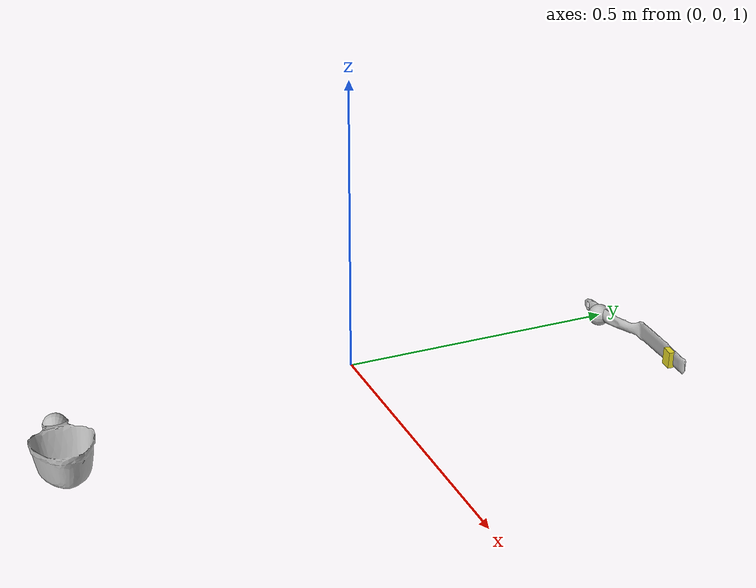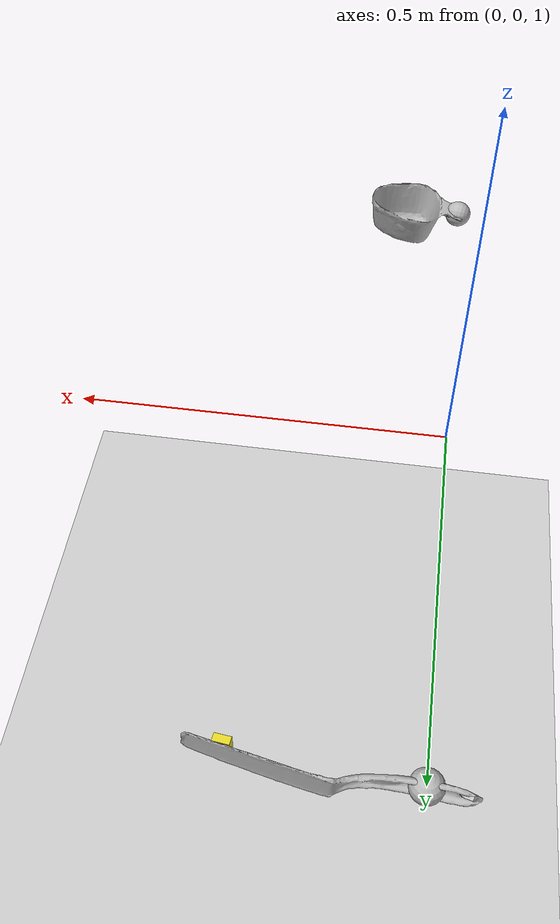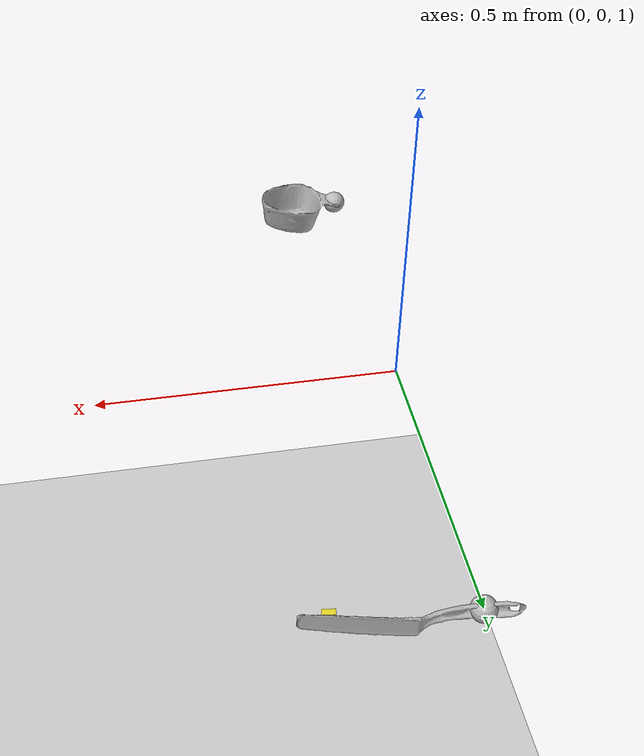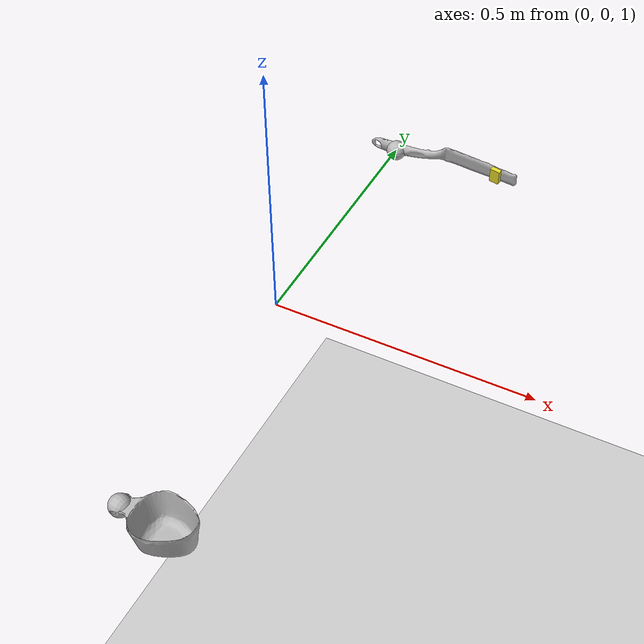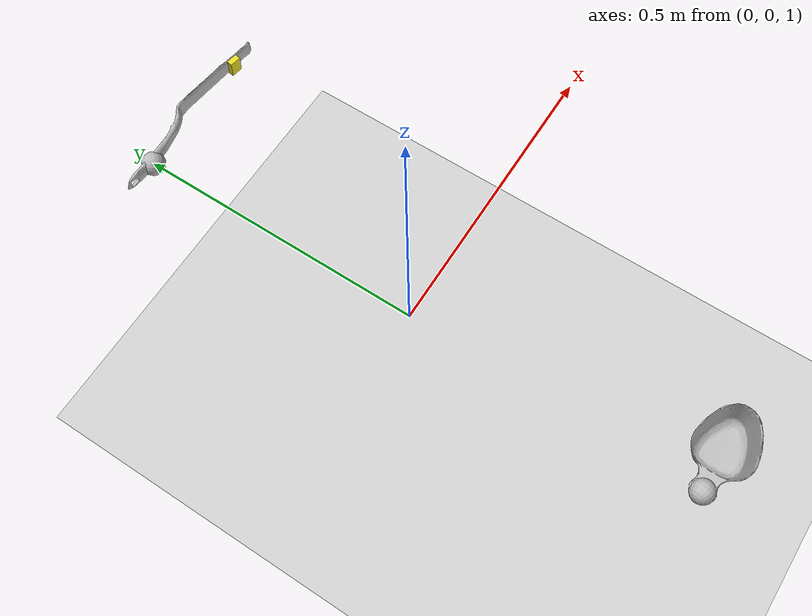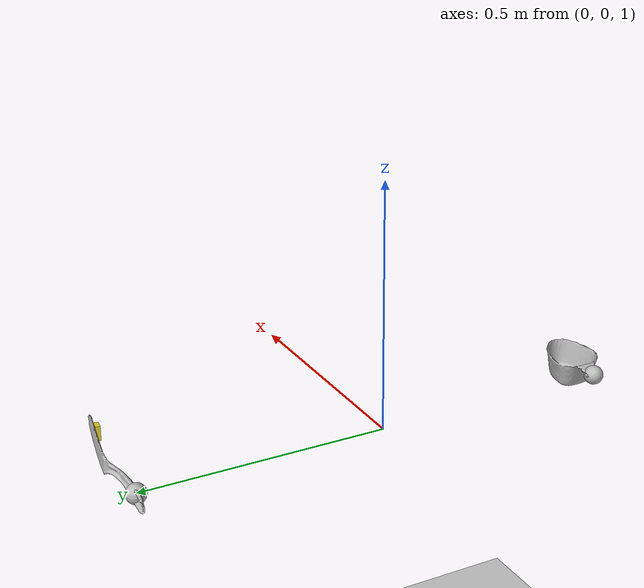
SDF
<?xml version='1.0'?>
<sdf version="1.6">
    <world name="b_wildo_bowl_b_thin_spatula_v">

        <include>
            <uri>model://sun</uri>
        </include>

        <include>
            <uri>model://ground_plane</uri>
        </include>

        <include>
            <uri>model://b_thin_spatula</uri>
            <pose>0.094321 0.507657 1.009274 -1.637236 0.074980 -3.141592</pose>
        </include>

        <include>
            <uri>model://butter_box</uri>
            <pose>0.218391 0.495434 1.018867 1.118105 1.524620 2.552731</pose>
            <plugin name="stick" filename="libStickPlugin.so">
              <parentLinkName>link</parentLinkName>
              <childLinkName>b_thin_spatula::link</childLinkName>
              <force>5</force>
            </plugin>
        </include>

        <include>
            <uri>model://b_wildo_bowl</uri>
            <pose>0.078818 -0.501749 0.988186 3.097035 0 0</pose>
        </include>

        <!-- Left Gripper -->
        <include>
            <uri>model://gripper</uri>
            <name>left_ee</name>
            <pose>0 0.5 1 0 0 0</pose>

            <plugin name="l_force_controller" filename="libvelocity_controller_plugin.so">
              <linkName>link</linkName>
              <topicName>set_l_ee_twist</topicName>
              <gains>
                <linear>
                  <P>100.0</P>
                  <I>0.0</I>
                  <D>25.0</D>
                </linear>
                <angular>
                  <P>100.0</P>
                  <I>0.0</I>
                  <D>25.0</D>
                </angular>
              </gains>
            </plugin>

            <plugin name="l_grip" filename="libGripPlugin.so">
              <parentLinkName>link</parentLinkName>
              <childLinkName>b_thin_spatula::link</childLinkName>
              <relativePose>0.094321 0.007657 0.009274 -1.63724 0.07498 -3.14159</relativePose>
            </plugin>

            <plugin name="l_tf_broadcaster" filename="libtf_broadcaster_plugin.so">
              <linkName>link</linkName>
              <frameName>l_gripper_tool_frame</frameName>
            </plugin>
        </include>

        <!-- Right Gripper -->
        <include>
            <uri>model://gripper</uri>
            <name>right_ee</name>
            <pose>0 -0.5 1 1.547368 1.402341 1.343703</pose>

            <plugin name="r_force_controller" filename="libvelocity_controller_plugin.so">
              <linkName>link</linkName>
              <topicName>set_r_ee_twist</topicName>
              <gains>
                <linear>
                  <P>100.0</P>
                  <I>0.0</I>
                  <D>25.0</D>
                </linear>
                <angular>
                  <P>100.0</P>
                  <I>0.0</I>
                  <D>25.0</D>
                </angular>
              </gains>
            </plugin>

            <plugin name="r_grip" filename="libGripPlugin.so">
              <parentLinkName>link</parentLinkName>
              <childLinkName>b_wildo_bowl::link</childLinkName>
              <relativePose>0.0089419 0.0135799 0.0780419 1.55636 1.32285 -1.41637</relativePose>
            </plugin>

            <plugin name="r_tf_broadcaster" filename="libtf_broadcaster_plugin.so">
              <linkName>link</linkName>
              <frameName>r_gripper_tool_frame</frameName>
            </plugin>
        </include>

        <plugin name="feature_visualization_plugin" filename="libgiskard_visualization_plugin.so"></plugin>

        <gui>
            <camera name='user_camera'>
                <pose>1.700789 1.175709 1.670612 0 0.375643 -2.675000</pose>
                <view_controller>orbit</view_controller>
            </camera>
        </gui>

    </world>
</sdf>

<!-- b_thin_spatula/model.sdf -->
<sdf version='1.6'>
	<model name='b_thin_spatula'>
		<static>false</static>
		<pose>0 0 0 0 0 0</pose>

		<link name='link'>
			<inertial>
			<mass>0.11</mass>
			<pose>2.3574e-18 -4.8479e-20 1.6546e-18 0 0 0</pose>
				<inertia>
					<ixx>1.7189e-07</ixx>
					<ixy>0</ixy>
					<ixz>0</ixz>
					<iyy>1.904e-07</iyy>
					<iyz>0</iyz>
					<izz>3.3856e-08</izz>
				</inertia>
			</inertial>
			<sensor name="tool_contact_sensor" type="contact">
				<always_on>true</always_on>
				<update_rate>30.0</update_rate>
				<contact>
					<collision>collision</collision>
				</contact>
				<plugin name="tool_bumper" filename="libgazebo_ros_bumper.so">
					<bumperTopicName>tool_contact_sensor_state</bumperTopicName>
					<frameName>world</frameName>
				</plugin>
			</sensor>
			<collision name='collision'>
				<geometry>
					<mesh>
						<uri>model://b_thin_spatula/b_thin_spatula.dae</uri>
					</mesh>
				</geometry>
				<surface>
					<friction>
						<ode>
							<mu>0.2</mu>
							<mu2>0.2</mu2>
						</ode>
					</friction>
				</surface>
			</collision>
			<visual name='visual'>
				<geometry>
					<mesh>
						<uri>model://b_thin_spatula/b_thin_spatula.dae</uri>
					</mesh>
				</geometry>
			</visual>
		</link>
	</model>
</sdf>

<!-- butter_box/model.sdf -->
<sdf version='1.6'>
    <model name='butter_box'>
        <static>false</static>
        <pose>0 0 0 0 0 0</pose>
        <link name='link'>
            <pose>0 0 0 0 0 0</pose>
            <inertial>
                <mass>0.001</mass>
                <pose>0 0 0 0 0 0</pose>
                <inertia>
                    <ixx>0.00000004167</ixx>
                    <iyy>0.00000008333</iyy>
                    <izz>0.00000010833</izz>
                    <ixy>0</ixy>
                    <ixz>0</ixz>
                    <iyz>0</iyz>
                </inertia>
            </inertial>
            <collision name='collision'>
                <geometry>
                    <box>
                        <size>0.03 0.02 0.01</size>
                    </box>
                </geometry>
                <surface>
                    <friction>
                        <ode>
                            <mu>0.2</mu>
                            <mu2>0.2</mu2>
                        </ode>
                    </friction>
                </surface>
            </collision>
            <visual name='visual'>
                <geometry>
                    <box>
                        <size>0.03 0.02 0.01</size>
                    </box>
                </geometry>
                <material>
                    <script>
                        <name>Gazebo/Yellow</name>
                        <uri>file://media/materials/scripts/gazebo.material</uri>
                    </script>
                </material>
            </visual>
        </link>
    </model>
</sdf>

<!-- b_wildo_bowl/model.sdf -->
<sdf version='1.6'>
    <model name='b_wildo_bowl'>
        <static>false</static>
        <pose>0 0 0 0 0 0</pose>

        <link name='link'>
            <inertial>
                <mass>0.40</mass>
                <pose>0.000382297035518770	-0.000149204207528814	0.00495379249275721 0 0 0</pose>
                <inertia>
                    <ixx>7.972462473661376e-05</ixx>
                    <ixy>0.0</ixy>
                    <ixz>0.0</ixz>
                    <iyy>9.743942735555959e-05</iyy>
                    <iyz>0.0</iyz>
                    <izz>3.897022921041362e-05</izz>
                </inertia>
            </inertial>

            <collision name='collision'>
                <geometry>
                    <mesh>
                        <uri>model://b_wildo_bowl/b_wildo_bowl.dae</uri>
                    </mesh>
                </geometry>
                <surface>
                    <friction>
                        <ode>
                            <mu>0.2</mu>
                            <mu2>0.2</mu2>
                        </ode>
                    </friction>
                </surface>
            </collision>
            <visual name='visual'>
                <geometry>
                    <mesh>
                        <uri>model://b_wildo_bowl/b_wildo_bowl.dae</uri>
                    </mesh>
                </geometry>
            </visual>
        </link>
    </model>
</sdf>

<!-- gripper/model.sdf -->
<sdf version='1.6'>
    <model name='gripper'>
        <static>false</static>
        <allow_auto_disable>false</allow_auto_disable>

        <pose>0 0 0 0 0 0</pose>

        <link name='link'>
            <pose>0 0 0 0 0 0</pose>

            <gravity>false</gravity>

            <visual name='visual'>
                <geometry>
                    <sphere>
                        <radius>0.02</radius>
                    </sphere>
                </geometry>
            </visual>

        </link>
    </model>
</sdf>
